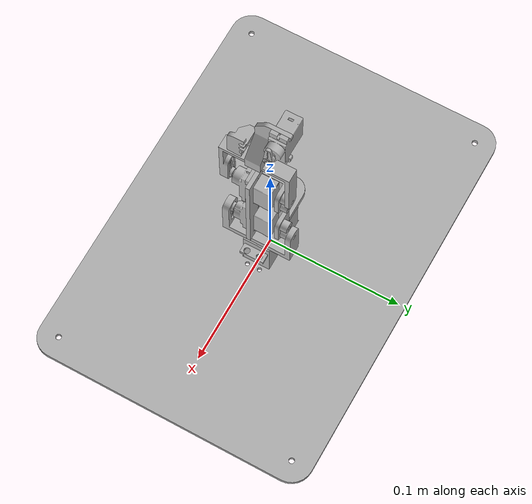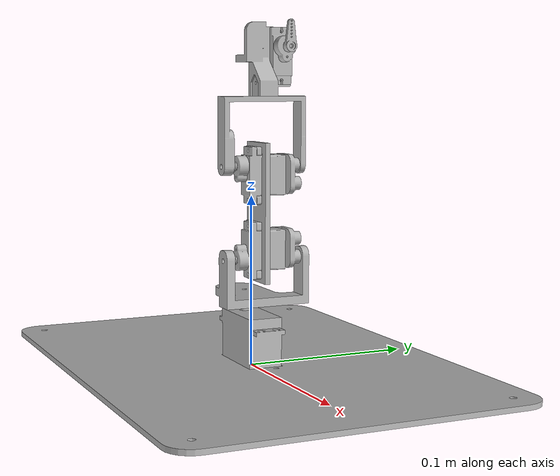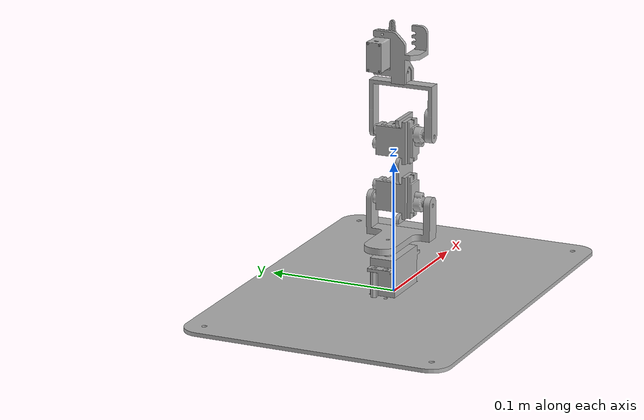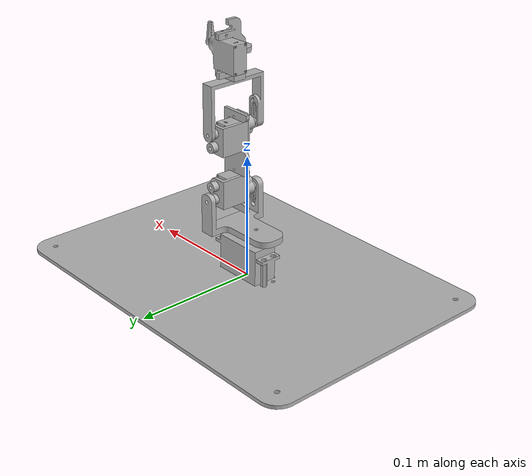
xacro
<?xml version="1.0" ?>
<robot name="sr1_3dof_urdf" xmlns:xacro="http://www.ros.org/wiki/xacro">

<xacro:include filename="$(find sr1_3dof_urdf_description)/urdf/materials.xacro" />
<xacro:include filename="$(find sr1_3dof_urdf_description)/urdf/sr1_3dof_urdf.trans" />
<xacro:include filename="$(find sr1_3dof_urdf_description)/urdf/sr1_3dof_urdf.gazebo" />
<link name="base_link">
  <inertial>
    <origin rpy="0 0 0" xyz="-0.0002513306601796678 0.00013267508841249576 0.001059046789686807"/>
    <mass value="1.4414312260182711"/>
    <inertia ixx="0.005341" ixy="-0.0" ixz="-0.0" iyy="0.010675" iyz="0.0" izz="0.016014"/>
  </inertial>
  <visual>
    <origin rpy="0 0 0" xyz="0 0 0"/>
    <geometry>
      <mesh filename="package://sr1_3dof_urdf_description/meshes/base_link.stl" scale="0.001 0.001 0.001"/>
    </geometry>
    <material name="silver"/>
  </visual>
  <collision>
    <origin rpy="0 0 0" xyz="0 0 0"/>
    <geometry>
      <mesh filename="package://sr1_3dof_urdf_description/meshes/base_link.stl" scale="0.001 0.001 0.001"/>
    </geometry>
  </collision>
</link>

<link name="standM20_1">
  <inertial>
    <origin rpy="0 0 0" xyz="-3.306599347871475e-07 -3.249115877925618e-07 0.01000004678968681"/>
    <mass value="0.0015683260779925593"/>
    <inertia ixx="0.0" ixy="0.0" ixz="0.0" iyy="0.0" iyz="0.0" izz="0.0"/>
  </inertial>
  <visual>
    <origin rpy="0 0 0" xyz="0.024751 -0.004883 -0.002559"/>
    <geometry>
      <mesh filename="package://sr1_3dof_urdf_description/meshes/standM20_1.stl" scale="0.001 0.001 0.001"/>
    </geometry>
    <material name="silver"/>
  </visual>
  <collision>
    <origin rpy="0 0 0" xyz="0.024751 -0.004883 -0.002559"/>
    <geometry>
      <mesh filename="package://sr1_3dof_urdf_description/meshes/standM20_1.stl" scale="0.001 0.001 0.001"/>
    </geometry>
  </collision>
</link>

<link name="servo1_1">
  <inertial>
    <origin rpy="0 0 0" xyz="0.024429239244436834 -0.004750324911591204 -0.008932139547487766"/>
    <mass value="0.23103338687475486"/>
    <inertia ixx="3.2e-05" ixy="-0.0" ixz="0.0" iyy="5.8e-05" iyz="0.0" izz="4.1e-05"/>
  </inertial>
  <visual>
    <origin rpy="0 0 0" xyz="0.024751 -0.004883 -0.022559"/>
    <geometry>
      <mesh filename="package://sr1_3dof_urdf_description/meshes/servo1_1.stl" scale="0.001 0.001 0.001"/>
    </geometry>
    <material name="silver"/>
  </visual>
  <collision>
    <origin rpy="0 0 0" xyz="0.024751 -0.004883 -0.022559"/>
    <geometry>
      <mesh filename="package://sr1_3dof_urdf_description/meshes/servo1_1.stl" scale="0.001 0.001 0.001"/>
    </geometry>
  </collision>
</link>

<link name="arm_servo2_1">
  <inertial>
    <origin rpy="0 0 0" xyz="5.963469627695561e-07 0.0018134751183520974 -0.003929292208864357"/>
    <mass value="0.0016195799801192233"/>
    <inertia ixx="0.0" ixy="0.0" ixz="0.0" iyy="0.0" iyz="-0.0" izz="0.0"/>
  </inertial>
  <visual>
    <origin rpy="0 0 0" xyz="-0.01564 0.022567 -0.065409"/>
    <geometry>
      <mesh filename="package://sr1_3dof_urdf_description/meshes/arm_servo2_1.stl" scale="0.001 0.001 0.001"/>
    </geometry>
    <material name="silver"/>
  </visual>
  <collision>
    <origin rpy="0 0 0" xyz="-0.01564 0.022567 -0.065409"/>
    <geometry>
      <mesh filename="package://sr1_3dof_urdf_description/meshes/arm_servo2_1.stl" scale="0.001 0.001 0.001"/>
    </geometry>
  </collision>
</link>

<link name="servo2_1">
  <inertial>
    <origin rpy="0 0 0" xyz="-3.306601796919384e-07 0.0017291344703287796 4.678937873259237e-08"/>
    <mass value="0.00045126850039796834"/>
    <inertia ixx="0.0" ixy="0.0" ixz="0.0" iyy="0.0" iyz="-0.0" izz="0.0"/>
  </inertial>
  <visual>
    <origin rpy="0 0 0" xyz="-0.01564 0.020067 -0.065409"/>
    <geometry>
      <mesh filename="package://sr1_3dof_urdf_description/meshes/servo2_1.stl" scale="0.001 0.001 0.001"/>
    </geometry>
    <material name="silver"/>
  </visual>
  <collision>
    <origin rpy="0 0 0" xyz="-0.01564 0.020067 -0.065409"/>
    <geometry>
      <mesh filename="package://sr1_3dof_urdf_description/meshes/servo2_1.stl" scale="0.001 0.001 0.001"/>
    </geometry>
  </collision>
</link>

<link name="servo_suit2_1">
  <inertial>
    <origin rpy="0 0 0" xyz="-0.004044486872933108 0.015156467820661096 -0.013874953115322247"/>
    <mass value="0.025845994288563736"/>
    <inertia ixx="4e-06" ixy="-0.0" ixz="0.0" iyy="2e-06" iyz="0.0" izz="3e-06"/>
  </inertial>
  <visual>
    <origin rpy="0 0 0" xyz="-0.01564 0.006317 -0.084659"/>
    <geometry>
      <mesh filename="package://sr1_3dof_urdf_description/meshes/servo_suit2_1.stl" scale="0.001 0.001 0.001"/>
    </geometry>
    <material name="silver"/>
  </visual>
  <collision>
    <origin rpy="0 0 0" xyz="-0.01564 0.006317 -0.084659"/>
    <geometry>
      <mesh filename="package://sr1_3dof_urdf_description/meshes/servo_suit2_1.stl" scale="0.001 0.001 0.001"/>
    </geometry>
  </collision>
</link>

<link name="link2_1">
  <inertial>
    <origin rpy="0 0 0" xyz="0.0008906247114664166 0.0014996740380796424 0.03525004678968814"/>
    <mass value="0.024002279759971108"/>
    <inertia ixx="1.3e-05" ixy="-0.0" ixz="0.0" iyy="1.4e-05" iyz="0.0" izz="1e-06"/>
  </inertial>
  <visual>
    <origin rpy="0 0 0" xyz="-0.01569 0.003317 -0.056909"/>
    <geometry>
      <mesh filename="package://sr1_3dof_urdf_description/meshes/link2_1.stl" scale="0.001 0.001 0.001"/>
    </geometry>
    <material name="silver"/>
  </visual>
  <collision>
    <origin rpy="0 0 0" xyz="-0.01569 0.003317 -0.056909"/>
    <geometry>
      <mesh filename="package://sr1_3dof_urdf_description/meshes/link2_1.stl" scale="0.001 0.001 0.001"/>
    </geometry>
  </collision>
</link>

<link name="servo_suit3_1">
  <inertial>
    <origin rpy="0 0 0" xyz="-0.004094486872933092 0.012156467820661097 0.013875046884677764"/>
    <mass value="0.025845994288563736"/>
    <inertia ixx="4e-06" ixy="-0.0" ixz="0.0" iyy="2e-06" iyz="0.0" izz="3e-06"/>
  </inertial>
  <visual>
    <origin rpy="0 0 0" xyz="-0.01569 0.003317 -0.099659"/>
    <geometry>
      <mesh filename="package://sr1_3dof_urdf_description/meshes/servo_suit3_1.stl" scale="0.001 0.001 0.001"/>
    </geometry>
    <material name="silver"/>
  </visual>
  <collision>
    <origin rpy="0 0 0" xyz="-0.01569 0.003317 -0.099659"/>
    <geometry>
      <mesh filename="package://sr1_3dof_urdf_description/meshes/servo_suit3_1.stl" scale="0.001 0.001 0.001"/>
    </geometry>
  </collision>
</link>

<link name="servo3_1">
  <inertial>
    <origin rpy="0 0 0" xyz="-3.306601796641828e-07 -0.012020865529671219 0.01925004678999484"/>
    <mass value="0.00045126850039796834"/>
    <inertia ixx="0.0" ixy="-0.0" ixz="0.0" iyy="0.0" iyz="0.0" izz="0.0"/>
  </inertial>
  <visual>
    <origin rpy="0 0 0" xyz="-0.01569 0.006317 -0.099659"/>
    <geometry>
      <mesh filename="package://sr1_3dof_urdf_description/meshes/servo3_1.stl" scale="0.001 0.001 0.001"/>
    </geometry>
    <material name="silver"/>
  </visual>
  <collision>
    <origin rpy="0 0 0" xyz="-0.01569 0.006317 -0.099659"/>
    <geometry>
      <mesh filename="package://sr1_3dof_urdf_description/meshes/servo3_1.stl" scale="0.001 0.001 0.001"/>
    </geometry>
  </collision>
</link>

<link name="arm_servo3_1">
  <inertial>
    <origin rpy="0 0 0" xyz="-1.2576673221291468e-06 -0.0006865248816478979 0.003929385788237955"/>
    <mass value="0.0016195799801192233"/>
    <inertia ixx="0.0" ixy="-0.0" ixz="0.0" iyy="0.0" iyz="0.0" izz="0.0"/>
  </inertial>
  <visual>
    <origin rpy="0 0 0" xyz="-0.01569 0.020067 -0.118909"/>
    <geometry>
      <mesh filename="package://sr1_3dof_urdf_description/meshes/arm_servo3_1.stl" scale="0.001 0.001 0.001"/>
    </geometry>
    <material name="silver"/>
  </visual>
  <collision>
    <origin rpy="0 0 0" xyz="-0.01569 0.020067 -0.118909"/>
    <geometry>
      <mesh filename="package://sr1_3dof_urdf_description/meshes/arm_servo3_1.stl" scale="0.001 0.001 0.001"/>
    </geometry>
  </collision>
</link>

<link name="arm_servo1_1">
  <inertial>
    <origin rpy="0 0 0" xyz="2.3104853023488137e-06 7.551504635582137e-07 0.0007555080204811118"/>
    <mass value="0.0059977269324000045"/>
    <inertia ixx="0.0" ixy="0.0" ixz="-0.0" iyy="0.0" iyz="-0.0" izz="1e-06"/>
  </inertial>
  <visual>
    <origin rpy="0 0 0" xyz="0.01036 -0.000133 -0.038559"/>
    <geometry>
      <mesh filename="package://sr1_3dof_urdf_description/meshes/arm_servo1_1.stl" scale="0.001 0.001 0.001"/>
    </geometry>
    <material name="silver"/>
  </visual>
  <collision>
    <origin rpy="0 0 0" xyz="0.01036 -0.000133 -0.038559"/>
    <geometry>
      <mesh filename="package://sr1_3dof_urdf_description/meshes/arm_servo1_1.stl" scale="0.001 0.001 0.001"/>
    </geometry>
  </collision>
</link>

<link name="link1_1">
  <inertial>
    <origin rpy="0 0 0" xyz="0.014528279310683897 0.0006582031499173364 0.004057458413534304"/>
    <mass value="0.07794699374847427"/>
    <inertia ixx="2.3e-05" ixy="-1e-06" ixz="-3e-06" iyy="2.4e-05" iyz="-0.0" izz="3.7e-05"/>
  </inertial>
  <visual>
    <origin rpy="0 0 0" xyz="0.01036 -0.000133 -0.040909"/>
    <geometry>
      <mesh filename="package://sr1_3dof_urdf_description/meshes/link1_1.stl" scale="0.001 0.001 0.001"/>
    </geometry>
    <material name="silver"/>
  </visual>
  <collision>
    <origin rpy="0 0 0" xyz="0.01036 -0.000133 -0.040909"/>
    <geometry>
      <mesh filename="package://sr1_3dof_urdf_description/meshes/link1_1.stl" scale="0.001 0.001 0.001"/>
    </geometry>
  </collision>
</link>

<link name="link3_1">
  <inertial>
    <origin rpy="0 0 0" xyz="1.6240993769386924e-05 0.02098286082457871 0.026682258954501284"/>
    <mass value="0.03785425732812347"/>
    <inertia ixx="2.2e-05" ixy="-0.0" ixz="-0.0" iyy="9e-06" iyz="-1e-06" izz="1.4e-05"/>
  </inertial>
  <visual>
    <origin rpy="0 0 0" xyz="-0.01569 0.022567 -0.118909"/>
    <geometry>
      <mesh filename="package://sr1_3dof_urdf_description/meshes/link3_1.stl" scale="0.001 0.001 0.001"/>
    </geometry>
    <material name="silver"/>
  </visual>
  <collision>
    <origin rpy="0 0 0" xyz="-0.01569 0.022567 -0.118909"/>
    <geometry>
      <mesh filename="package://sr1_3dof_urdf_description/meshes/link3_1.stl" scale="0.001 0.001 0.001"/>
    </geometry>
  </collision>
</link>

<link name="gripper_1">
  <inertial>
    <origin rpy="0 0 0" xyz="-0.00046348169400030163 -0.003986723614618486 0.010686415860186205"/>
    <mass value="0.03354685638470914"/>
    <inertia ixx="6e-06" ixy="1e-06" ixz="-0.0" iyy="5e-06" iyz="1e-06" izz="3e-06"/>
  </inertial>
  <visual>
    <origin rpy="0 0 0" xyz="-0.01569 -0.002815 -0.165693"/>
    <geometry>
      <mesh filename="package://sr1_3dof_urdf_description/meshes/gripper_1.stl" scale="0.001 0.001 0.001"/>
    </geometry>
    <material name="silver"/>
  </visual>
  <collision>
    <origin rpy="0 0 0" xyz="-0.01569 -0.002815 -0.165693"/>
    <geometry>
      <mesh filename="package://sr1_3dof_urdf_description/meshes/gripper_1.stl" scale="0.001 0.001 0.001"/>
    </geometry>
  </collision>
</link>

<link name="servo_gripper_1">
  <inertial>
    <origin rpy="0 0 0" xyz="0.012020708907571221 -3.249115879313397e-07 -0.008500466304414783"/>
    <mass value="0.00045126850039796834"/>
    <inertia ixx="0.0" ixy="0.0" ixz="-0.0" iyy="0.0" iyz="0.0" izz="0.0"/>
  </inertial>
  <visual>
    <origin rpy="0 0 0" xyz="-0.010713 -0.012815 -0.194693"/>
    <geometry>
      <mesh filename="package://sr1_3dof_urdf_description/meshes/servo_gripper_1.stl" scale="0.001 0.001 0.001"/>
    </geometry>
    <material name="silver"/>
  </visual>
  <collision>
    <origin rpy="0 0 0" xyz="-0.010713 -0.012815 -0.194693"/>
    <geometry>
      <mesh filename="package://sr1_3dof_urdf_description/meshes/servo_gripper_1.stl" scale="0.001 0.001 0.001"/>
    </geometry>
  </collision>
</link>

<link name="gripper_arm_1">
  <inertial>
    <origin rpy="0 0 0" xyz="0.0006863682595479141 -1.2519187303928342e-06 0.003928872693828328"/>
    <mass value="0.0016195799801192233"/>
    <inertia ixx="0.0" ixy="0.0" ixz="-0.0" iyy="0.0" iyz="0.0" izz="0.0"/>
  </inertial>
  <visual>
    <origin rpy="0 0 0" xyz="-0.024463 -0.012815 -0.186193"/>
    <geometry>
      <mesh filename="package://sr1_3dof_urdf_description/meshes/gripper_arm_1.stl" scale="0.001 0.001 0.001"/>
    </geometry>
    <material name="silver"/>
  </visual>
  <collision>
    <origin rpy="0 0 0" xyz="-0.024463 -0.012815 -0.186193"/>
    <geometry>
      <mesh filename="package://sr1_3dof_urdf_description/meshes/gripper_arm_1.stl" scale="0.001 0.001 0.001"/>
    </geometry>
  </collision>
</link>

<joint name="Rigid24" type="fixed">
  <origin rpy="0 0 0" xyz="-0.024751 0.004883 0.002559"/>
  <parent link="base_link"/>
  <child link="standM20_1"/>
</joint>

<joint name="Rigid25" type="fixed">
  <origin rpy="0 0 0" xyz="0.0 0.0 0.02"/>
  <parent link="standM20_1"/>
  <child link="servo1_1"/>
</joint>

<joint name="Rigid28" type="fixed">
  <origin rpy="0 0 0" xyz="0.026 -0.0227 0.0245"/>
  <parent link="link1_1"/>
  <child link="arm_servo2_1"/>
</joint>

<joint name="joint2" type="revolute">
  <origin rpy="0 0 0" xyz="0.0 0.0025 0.0"/>
  <parent link="arm_servo2_1"/>
  <child link="servo2_1"/>
  <axis xyz="-0.0 -1.0 -0.0"/>
  <limit effort="100" lower="-1.570796" upper="1.570796" velocity="100"/>
</joint>

<joint name="Rigid30" type="fixed">
  <origin rpy="0 0 0" xyz="0.0 0.01375 0.01925"/>
  <parent link="servo2_1"/>
  <child link="servo_suit2_1"/>
</joint>

<joint name="Rigid31" type="fixed">
  <origin rpy="0 0 0" xyz="5e-05 0.003 -0.02775"/>
  <parent link="servo_suit2_1"/>
  <child link="link2_1"/>
</joint>

<joint name="Rigid32" type="fixed">
  <origin rpy="0 0 0" xyz="0.0 0.0 0.04275"/>
  <parent link="link2_1"/>
  <child link="servo_suit3_1"/>
</joint>

<joint name="Rigid33" type="fixed">
  <origin rpy="0 0 0" xyz="0.0 -0.003 0.0"/>
  <parent link="servo_suit3_1"/>
  <child link="servo3_1"/>
</joint>

<joint name="joint3" type="revolute">
  <origin rpy="0 0 0" xyz="0.0 -0.01375 0.01925"/>
  <parent link="servo3_1"/>
  <child link="arm_servo3_1"/>
  <axis xyz="-0.0 -1.0 0.0"/>
  <limit effort="100" lower="-1.570796" upper="1.570796" velocity="100"/>
</joint>

<joint name="joint1" type="revolute">
  <origin rpy="0 0 0" xyz="0.014391 -0.00475 0.016"/>
  <parent link="servo1_1"/>
  <child link="arm_servo1_1"/>
  <axis xyz="0.0 -0.0 1.0"/>
  <limit effort="100" lower="-1.570796" upper="1.570796" velocity="100"/>
</joint>

<joint name="Rigid37" type="fixed">
  <origin rpy="0 0 0" xyz="0.0 0.0 0.00235"/>
  <parent link="arm_servo1_1"/>
  <child link="link1_1"/>
</joint>

<joint name="Rigid39" type="fixed">
  <origin rpy="0 0 0" xyz="0.0 -0.0025 0.0"/>
  <parent link="arm_servo3_1"/>
  <child link="link3_1"/>
</joint>

<joint name="Rigid40" type="fixed">
  <origin rpy="0 0 0" xyz="0.0 0.025382 0.046784"/>
  <parent link="link3_1"/>
  <child link="gripper_1"/>
</joint>

<joint name="Rigid41" type="fixed">
  <origin rpy="0 0 0" xyz="-0.004977 0.01 0.029"/>
  <parent link="gripper_1"/>
  <child link="servo_gripper_1"/>
</joint>

<joint name="Rev42" type="revolute">
  <origin rpy="0 0 0" xyz="0.01375 0.0 -0.0085"/>
  <parent link="servo_gripper_1"/>
  <child link="gripper_arm_1"/>
  <axis xyz="1.0 -0.0 -0.0"/>
  <limit effort="100" lower="0.0" upper="3.141593" velocity="100"/>
</joint>

</robot>

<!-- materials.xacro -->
<robot name="sr1_3dof_urdf" xmlns:xacro="http://www.ros.org/wiki/xacro" >

<material name="silver">
  <color rgba="0.700 0.700 0.700 1.000"/>
</material>

</robot>

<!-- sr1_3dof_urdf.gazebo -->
<robot name="sr1_3dof_urdf" xmlns:xacro="http://www.ros.org/wiki/xacro" >

<xacro:property name="body_color" value="Gazebo/Silver" />

<gazebo>
  <plugin filename="libgazebo_ros_control.so" name="control"/>
</gazebo>
<gazebo reference="base_link">
  <material>${body_color}</material>
  <mu1>0.2</mu1>
  <mu2>0.2</mu2>
  <selfCollide>true</selfCollide>
  <gravity>true</gravity>
</gazebo>

<gazebo reference="standM20_1">
  <material>${body_color}</material>
  <mu1>0.2</mu1>
  <mu2>0.2</mu2>
  <selfCollide>true</selfCollide>
</gazebo>

<gazebo reference="servo1_1">
  <material>${body_color}</material>
  <mu1>0.2</mu1>
  <mu2>0.2</mu2>
  <selfCollide>true</selfCollide>
</gazebo>

<gazebo reference="arm_servo2_1">
  <material>${body_color}</material>
  <mu1>0.2</mu1>
  <mu2>0.2</mu2>
  <selfCollide>true</selfCollide>
</gazebo>

<gazebo reference="servo2_1">
  <material>${body_color}</material>
  <mu1>0.2</mu1>
  <mu2>0.2</mu2>
  <selfCollide>true</selfCollide>
</gazebo>

<gazebo reference="servo_suit2_1">
  <material>${body_color}</material>
  <mu1>0.2</mu1>
  <mu2>0.2</mu2>
  <selfCollide>true</selfCollide>
</gazebo>

<gazebo reference="link2_1">
  <material>${body_color}</material>
  <mu1>0.2</mu1>
  <mu2>0.2</mu2>
  <selfCollide>true</selfCollide>
</gazebo>

<gazebo reference="servo_suit3_1">
  <material>${body_color}</material>
  <mu1>0.2</mu1>
  <mu2>0.2</mu2>
  <selfCollide>true</selfCollide>
</gazebo>

<gazebo reference="servo3_1">
  <material>${body_color}</material>
  <mu1>0.2</mu1>
  <mu2>0.2</mu2>
  <selfCollide>true</selfCollide>
</gazebo>

<gazebo reference="arm_servo3_1">
  <material>${body_color}</material>
  <mu1>0.2</mu1>
  <mu2>0.2</mu2>
  <selfCollide>true</selfCollide>
</gazebo>

<gazebo reference="arm_servo1_1">
  <material>${body_color}</material>
  <mu1>0.2</mu1>
  <mu2>0.2</mu2>
  <selfCollide>true</selfCollide>
</gazebo>

<gazebo reference="link1_1">
  <material>${body_color}</material>
  <mu1>0.2</mu1>
  <mu2>0.2</mu2>
  <selfCollide>true</selfCollide>
</gazebo>

<gazebo reference="link3_1">
  <material>${body_color}</material>
  <mu1>0.2</mu1>
  <mu2>0.2</mu2>
  <selfCollide>true</selfCollide>
</gazebo>

<gazebo reference="gripper_1">
  <material>${body_color}</material>
  <mu1>0.2</mu1>
  <mu2>0.2</mu2>
  <selfCollide>true</selfCollide>
</gazebo>

<gazebo reference="servo_gripper_1">
  <material>${body_color}</material>
  <mu1>0.2</mu1>
  <mu2>0.2</mu2>
  <selfCollide>true</selfCollide>
</gazebo>

<gazebo reference="gripper_arm_1">
  <material>${body_color}</material>
  <mu1>0.2</mu1>
  <mu2>0.2</mu2>
  <selfCollide>true</selfCollide>
</gazebo>

</robot>
